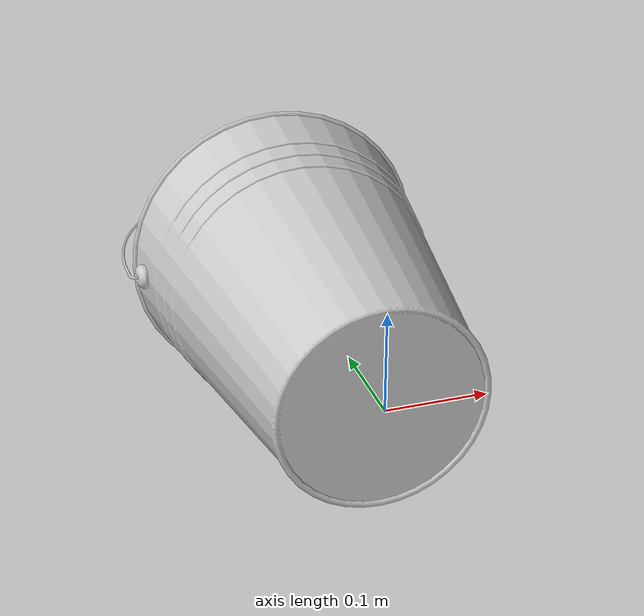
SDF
<sdf version="1.6">
  <model name="bucket">
    <static>false</static>
    <self_collide>true</self_collide>
    <link name="link">
      <pose>0 0 0 0 0 0</pose>
      <gravity>true</gravity>
      <self_collide>true</self_collide>
      <inertial>
        <mass>0.5</mass>  <!-- 0.5kg - lightweight plastic bucket for easier lifting -->
        <pose>0 0.25 0 0 0 0</pose>  <!-- Center of mass between body (Y=0.18) and handle (Y=0.505) -->
        <inertia>
          <!-- Reduced inertia for lighter bucket -->
          <ixx>0.010</ixx>  <!-- Around X axis -->
          <iyy>0.010</iyy>  <!-- Around Y axis -->
          <izz>0.004</izz>  <!-- Around Z axis -->
          <ixy>0</ixy>
          <ixz>0</ixz>
          <iyz>0</iyz>
        </inertia>
      </inertial>

      <!-- Visual: Keep detailed mesh for appearance -->
      <visual name="visual">
        <geometry>
          <mesh>
            <uri>model://bucket/meshes/Bucket.dae</uri>
            <scale>0.007 0.007 0.007</scale>
          </mesh>
        </geometry>
      </visual>

      <!-- Simplified collision: Cylinder for bucket body -->
      <!-- LOW FRICTION with ground to allow easy lifting -->
      <collision name="bucket_body">
        <pose>0 0.18 0 1.5707963267948966 0 0</pose>
        <geometry>
          <cylinder>
            <radius>0.125</radius>
            <length>0.38</length>
          </cylinder>
        </geometry>
        <surface>
          <friction>
            <ode>
              <mu>0.3</mu>      <!-- LOW friction for ground contact - allows lifting -->
              <mu2>0.3</mu2>
            </ode>
          </friction>
          <contact>
            <ode>
              <kp>3000000.0</kp>        <!-- Match handle: 3M stiffness -->
              <kd>3000.0</kd>           <!-- Match handle: 3000 damping -->
              <max_vel>0.0001</max_vel> <!-- Match handle: ultra-slow correction -->
              <min_depth>0.00005</min_depth>  <!-- Match handle: 0.05mm detection -->
            </ode>
          </contact>
          <soft_cfm>0.0</soft_cfm>
          <soft_erp>0.2</soft_erp>
        </surface>
      </collision>

      <!-- HANDLE COLLISIONS - Thicker boxes for better hook contact -->
      <!-- ULTRA-AGGRESSIVE ANTI-SLIP: Maximum friction + high stiffness + slow correction -->

      <!-- Horizontal middle section (top of handle arc) -->
      <collision name="bucket_handle_horiz_mid">
        <pose>0 0.505 0 0 0 0</pose>
        <geometry>
          <box>
            <size>0.090 0.015 0.015</size>  <!-- Doubled thickness: 15mm instead of 7.5mm -->
          </box>
        </geometry>
        <surface>
          <friction>
            <ode>
              <mu>2000.0</mu>      <!-- DOUBLED from 1000 - MAXIMUM friction for 100% reliability -->
              <mu2>2000.0</mu2>
              <fdir1>0 0 1</fdir1>  <!-- Vertical friction direction for lift forces -->
            </ode>
          </friction>
          <contact>
            <ode>
              <kp>5000000.0</kp>        <!-- INCREASED to 5M - ultra-stiff, exceeds gripper even more -->
              <kd>5000.0</kd>           <!-- INCREASED to 5000 - maximum stabilization -->
              <max_vel>0.00005</max_vel> <!-- HALVED - ultra-ultra-slow correction: 0.05mm/s -->
              <min_depth>0.00005</min_depth>  <!-- 0.05mm - matches gripper exactly -->
            </ode>
          </contact>
          <bounce>
            <restitution_coefficient>0.0</restitution_coefficient>  <!-- No bounce -->
            <threshold>0.0</threshold>
          </bounce>
          <soft_cfm>0.0</soft_cfm>  <!-- Perfectly rigid contact -->
          <soft_erp>0.2</soft_erp>  <!-- Balanced error correction -->
        </surface>
      </collision>

    </link>
  </model>
</sdf>
